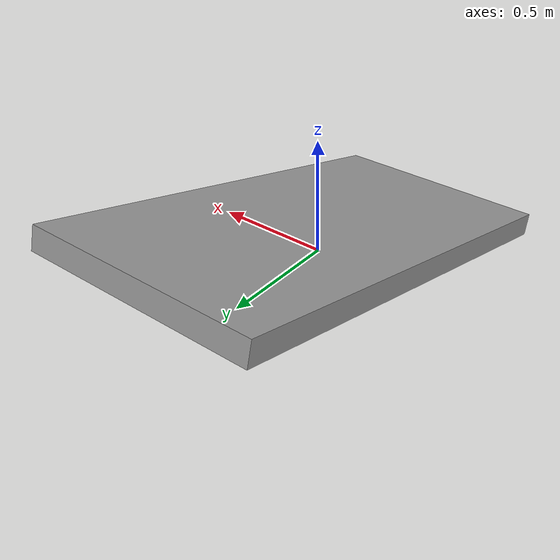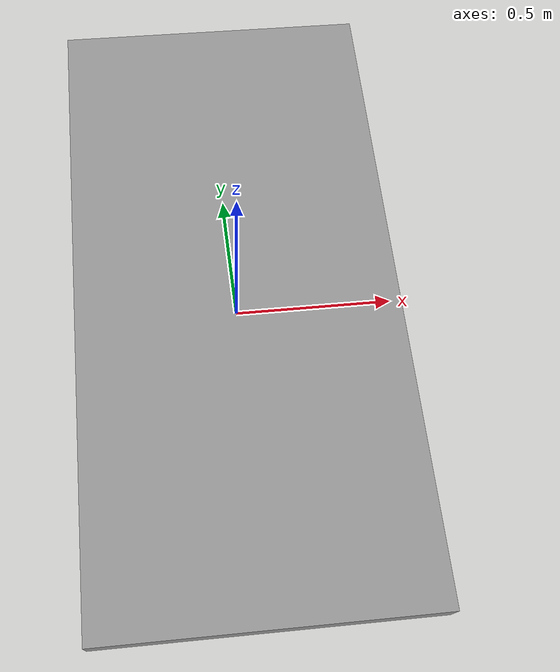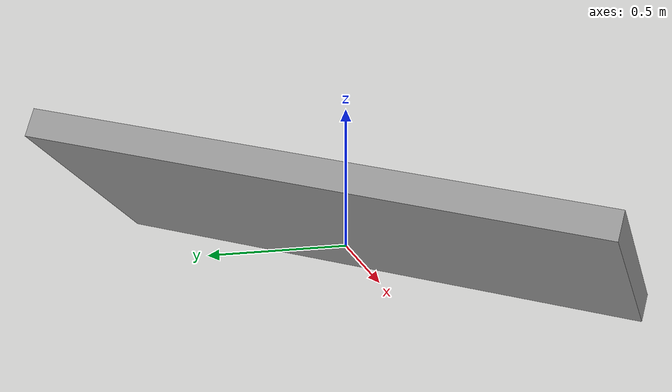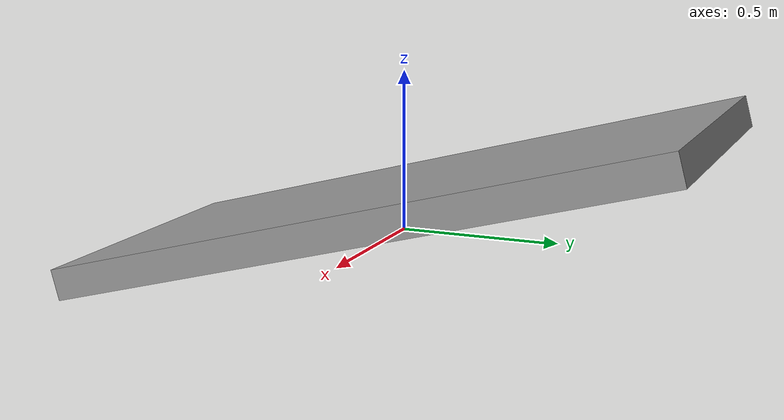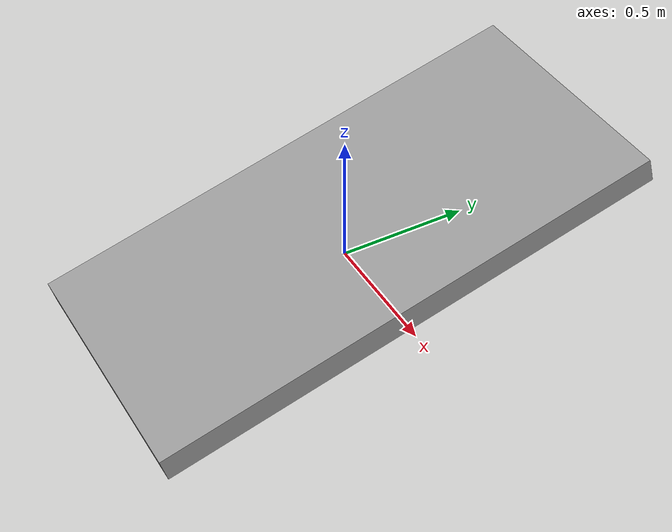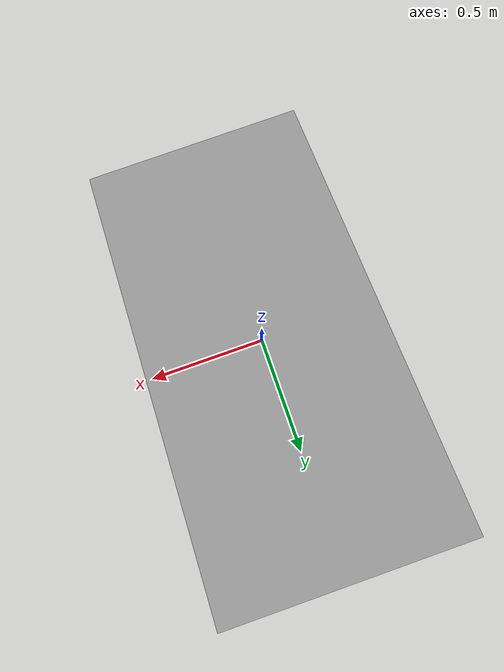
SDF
<sdf version="1.9">
  <model name="ramp_15deg">
    <static>true</static>
    <link name="ramp">
      <!-- pitch=15deg = 0.261799rad -->
      <pose>0 0 0.1 0.261799 0 0</pose>
      <collision name="col">
        <geometry><box><size>1.0 2.0 0.1</size></box></geometry>
        <surface>
          <friction><ode><mu>1.5</mu><mu2>1.5</mu2></ode></friction>
          <contact><ode><kp>1e6</kp><kd>1.0</kd></ode></contact>
        </surface>
      </collision>
      <visual name="vis">
        <geometry><box><size>1.0 2.0 0.1</size></box></geometry>
        <material>
          <ambient>0.5 0.5 0.5 1</ambient>
          <diffuse>0.6 0.6 0.6 1</diffuse>
        </material>
      </visual>
    </link>
  </model>
</sdf>
